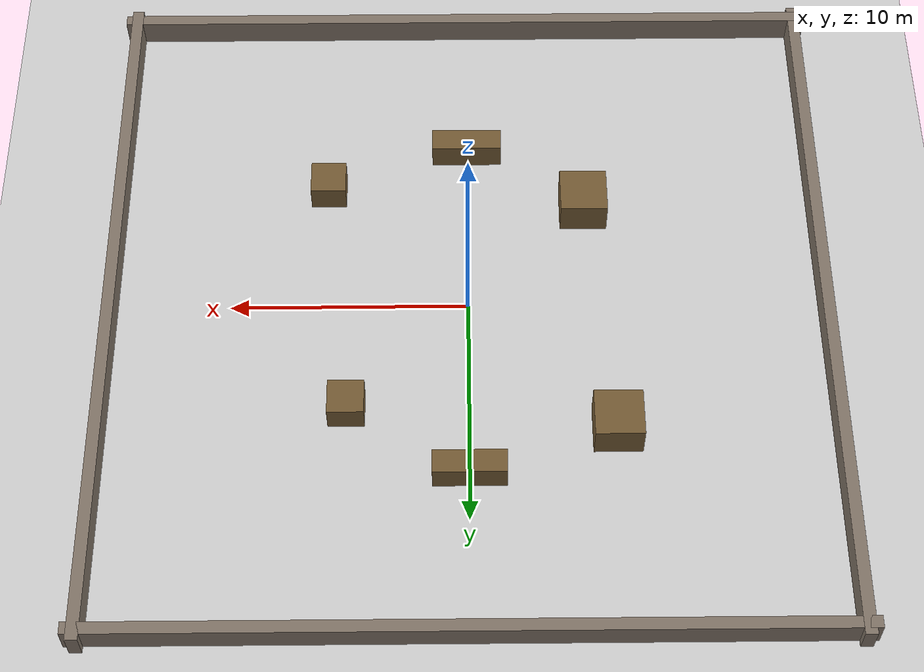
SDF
<?xml version="1.0" ?>
<sdf version="1.6">
  <!-- tank-battle 战场:30x30m 平地 + 四周围墙 + 掩体箱 -->
  <world name="battlefield">
    <include><uri>model://ground_plane</uri></include>
    <include><uri>model://sun</uri></include>

    <!-- 实体状态插件:提供 /model_states 话题与 get/set_entity_state 服务
         (combat 命中判定/炮弹初速/道具拾取都靠它) -->
    <plugin name="gazebo_ros_state" filename="libgazebo_ros_state.so"/>

    <scene>
      <shadows>false</shadows>
    </scene>

    <!-- ====== 四周围墙(防坦克/炮弹出界)====== -->
    <model name="wall_north">
      <static>true</static>
      <pose>0 15 0.6 0 0 0</pose>
      <link name="link">
        <collision name="col"><geometry><box><size>31 0.5 1.2</size></box></geometry></collision>
        <visual name="vis"><geometry><box><size>31 0.5 1.2</size></box></geometry>
          <material><ambient>0.4 0.35 0.3 1</ambient><diffuse>0.5 0.45 0.4 1</diffuse></material>
        </visual>
      </link>
    </model>
    <model name="wall_south">
      <static>true</static>
      <pose>0 -15 0.6 0 0 0</pose>
      <link name="link">
        <collision name="col"><geometry><box><size>31 0.5 1.2</size></box></geometry></collision>
        <visual name="vis"><geometry><box><size>31 0.5 1.2</size></box></geometry>
          <material><ambient>0.4 0.35 0.3 1</ambient><diffuse>0.5 0.45 0.4 1</diffuse></material>
        </visual>
      </link>
    </model>
    <model name="wall_east">
      <static>true</static>
      <pose>15 0 0.6 0 0 0</pose>
      <link name="link">
        <collision name="col"><geometry><box><size>0.5 31 1.2</size></box></geometry></collision>
        <visual name="vis"><geometry><box><size>0.5 31 1.2</size></box></geometry>
          <material><ambient>0.4 0.35 0.3 1</ambient><diffuse>0.5 0.45 0.4 1</diffuse></material>
        </visual>
      </link>
    </model>
    <model name="wall_west">
      <static>true</static>
      <pose>-15 0 0.6 0 0 0</pose>
      <link name="link">
        <collision name="col"><geometry><box><size>0.5 31 1.2</size></box></geometry></collision>
        <visual name="vis"><geometry><box><size>0.5 31 1.2</size></box></geometry>
          <material><ambient>0.4 0.35 0.3 1</ambient><diffuse>0.5 0.45 0.4 1</diffuse></material>
        </visual>
      </link>
    </model>

    <!-- ====== 掩体障碍(静态,打不烂;位置避开中心出生区)====== -->
    <model name="crate_1">
      <static>true</static>
      <pose>5 5 0.6 0 0 0</pose>
      <link name="link">
        <collision name="col"><geometry><box><size>1.5 1.5 1.2</size></box></geometry></collision>
        <visual name="vis"><geometry><box><size>1.5 1.5 1.2</size></box></geometry>
          <material><ambient>0.3 0.25 0.15 1</ambient><diffuse>0.45 0.35 0.2 1</diffuse></material>
        </visual>
      </link>
    </model>
    <model name="crate_2">
      <static>true</static>
      <pose>-5 -5 0.75 0 0 0</pose>
      <link name="link">
        <collision name="col"><geometry><box><size>2 2 1.5</size></box></geometry></collision>
        <visual name="vis"><geometry><box><size>2 2 1.5</size></box></geometry>
          <material><ambient>0.3 0.25 0.15 1</ambient><diffuse>0.45 0.35 0.2 1</diffuse></material>
        </visual>
      </link>
    </model>
    <model name="crate_3">
      <static>true</static>
      <pose>6 -6 0.6 0 0 0</pose>
      <link name="link">
        <collision name="col"><geometry><box><size>1.5 1.5 1.2</size></box></geometry></collision>
        <visual name="vis"><geometry><box><size>1.5 1.5 1.2</size></box></geometry>
          <material><ambient>0.3 0.25 0.15 1</ambient><diffuse>0.45 0.35 0.2 1</diffuse></material>
        </visual>
      </link>
    </model>
    <model name="crate_4">
      <static>true</static>
      <pose>-6 6 0.75 0 0 0</pose>
      <link name="link">
        <collision name="col"><geometry><box><size>2 2 1.5</size></box></geometry></collision>
        <visual name="vis"><geometry><box><size>2 2 1.5</size></box></geometry>
          <material><ambient>0.3 0.25 0.15 1</ambient><diffuse>0.45 0.35 0.2 1</diffuse></material>
        </visual>
      </link>
    </model>
    <model name="barrier_n">
      <static>true</static>
      <pose>0 8 0.6 0 0 0</pose>
      <link name="link">
        <collision name="col"><geometry><box><size>3 1 1.2</size></box></geometry></collision>
        <visual name="vis"><geometry><box><size>3 1 1.2</size></box></geometry>
          <material><ambient>0.3 0.25 0.15 1</ambient><diffuse>0.45 0.35 0.2 1</diffuse></material>
        </visual>
      </link>
    </model>
    <model name="barrier_s">
      <static>true</static>
      <pose>0 -8 0.6 0 0 0</pose>
      <link name="link">
        <collision name="col"><geometry><box><size>3 1 1.2</size></box></geometry></collision>
        <visual name="vis"><geometry><box><size>3 1 1.2</size></box></geometry>
          <material><ambient>0.3 0.25 0.15 1</ambient><diffuse>0.45 0.35 0.2 1</diffuse></material>
        </visual>
      </link>
    </model>

  </world>
</sdf>
